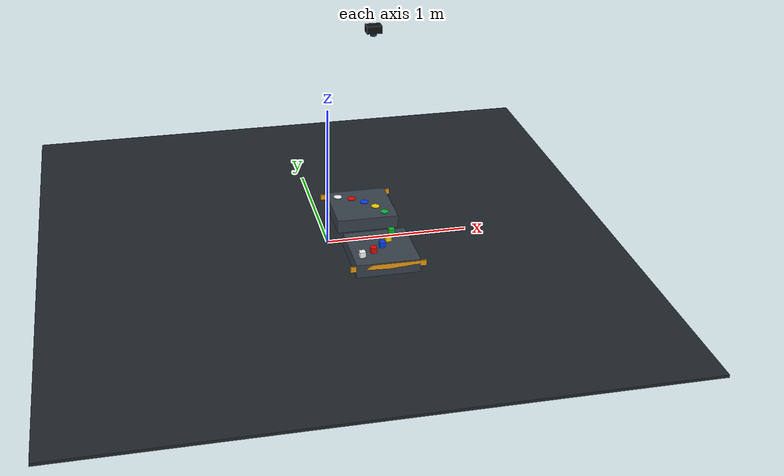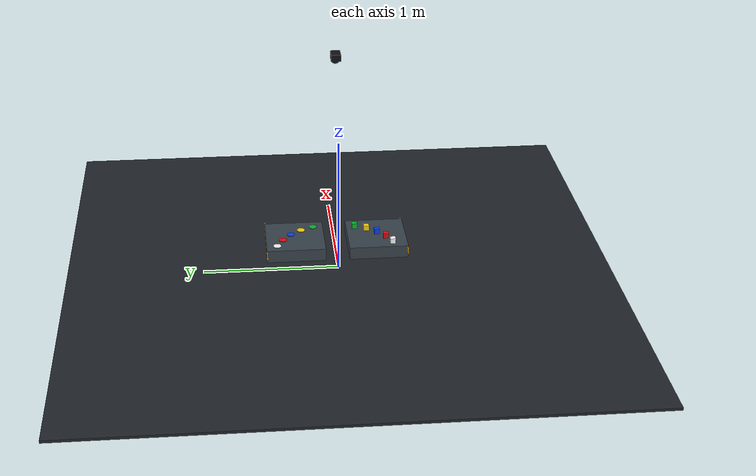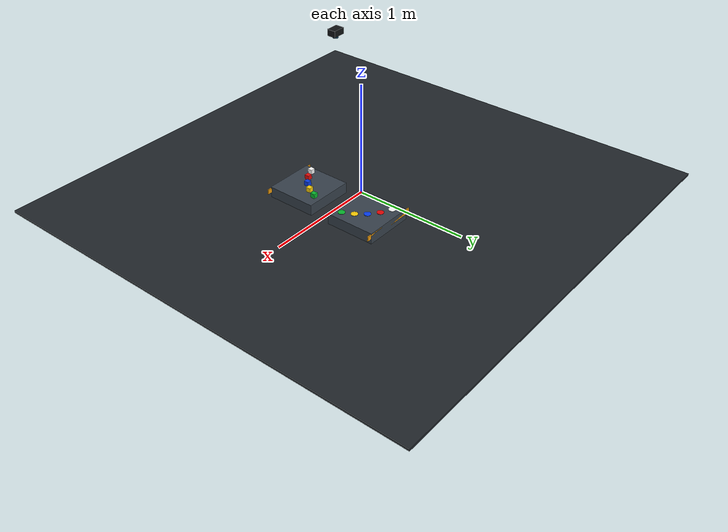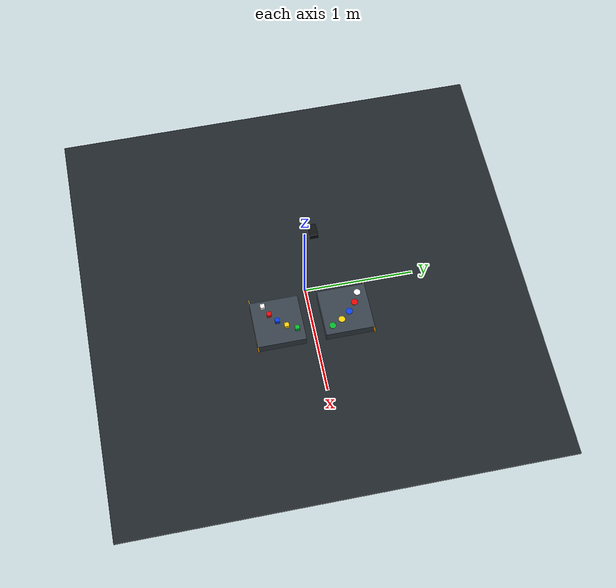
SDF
<?xml version="1.0"?>
<sdf version="1.10">
  <world name="pick_place">
    <gravity>0 0 -9.81</gravity>
    <physics name="physics" type="dart">
      <max_step_size>0.001</max_step_size>
      <real_time_factor>1.0</real_time_factor>
    </physics>

    <plugin filename="gz-sim-physics-system" name="gz::sim::systems::Physics"/>
    <plugin filename="gz-sim-user-commands-system" name="gz::sim::systems::UserCommands"/>
    <plugin filename="gz-sim-scene-broadcaster-system" name="gz::sim::systems::SceneBroadcaster"/>
    <plugin filename="gz-sim-contact-system" name="gz::sim::systems::Contact"/>
    <plugin filename="gz-sim-sensors-system" name="gz::sim::systems::Sensors">
      <render_engine>ogre2</render_engine>
    </plugin>

    <light name="key_light" type="directional">
      <cast_shadows>true</cast_shadows>
      <pose>0 0 5 0 0 0</pose>
      <diffuse>0.95 0.95 0.95 1</diffuse>
      <specular>0.25 0.25 0.25 1</specular>
      <direction>-0.35 0.25 -1.0</direction>
    </light>

    <model name="ground">
      <static>true</static>
      <link name="ground_link">
        <collision name="ground_collision">
          <geometry><box><size>4 4 0.02</size></box></geometry>
        </collision>
        <visual name="ground_visual">
          <geometry><box><size>4 4 0.02</size></box></geometry>
          <material><ambient>0.10 0.12 0.14 1</ambient><diffuse>0.13 0.15 0.17 1</diffuse></material>
        </visual>
      </link>
    </model>

    <model name="source_table">
      <static>true</static>
      <pose>0.31 -0.31 0.055 0 0 0</pose>
      <link name="table_link">
        <collision name="top_collision"><geometry><box><size>0.44 0.44 0.10</size></box></geometry></collision>
        <visual name="top_visual">
          <geometry><box><size>0.44 0.44 0.10</size></box></geometry>
          <material><ambient>0.18 0.22 0.26 1</ambient><diffuse>0.22 0.26 0.30 1</diffuse></material>
        </visual>
        <visual name="front_safety_stripe">
          <pose>0.0 -0.216 0.02 0 0 0</pose>
          <geometry><box><size>0.52 0.008 0.04</size></box></geometry>
          <material><ambient>0.95 0.62 0.04 1</ambient><diffuse>0.95 0.62 0.04 1</diffuse></material>
        </visual>
      </link>
    </model>

    <model name="destination_table">
      <static>true</static>
      <pose>0.31 0.31 0.055 0 0 0</pose>
      <link name="table_link">
        <collision name="top_collision"><geometry><box><size>0.44 0.44 0.10</size></box></geometry></collision>
        <visual name="top_visual">
          <geometry><box><size>0.44 0.44 0.10</size></box></geometry>
          <material><ambient>0.18 0.22 0.26 1</ambient><diffuse>0.22 0.26 0.30 1</diffuse></material>
        </visual>
        <visual name="front_safety_stripe">
          <pose>0.0 0.216 0.02 0 0 0</pose>
          <geometry><box><size>0.52 0.008 0.04</size></box></geometry>
          <material><ambient>0.95 0.62 0.04 1</ambient><diffuse>0.95 0.62 0.04 1</diffuse></material>
        </visual>
        <visual name="white_slot"><pose>-0.146 0.139 0.052 0 0 0</pose><geometry><cylinder><radius>0.030</radius><length>0.004</length></cylinder></geometry><material><ambient>0.9 0.9 0.9 1</ambient><diffuse>1 1 1 1</diffuse></material></visual>
        <visual name="red_slot"><pose>-0.053 0.093 0.052 0 0 0</pose><geometry><cylinder><radius>0.030</radius><length>0.004</length></cylinder></geometry><material><ambient>0.65 0.02 0.02 1</ambient><diffuse>0.9 0.03 0.03 1</diffuse></material></visual>
        <visual name="blue_slot"><pose>0.028 0.028 0.052 0 0 0</pose><geometry><cylinder><radius>0.030</radius><length>0.004</length></cylinder></geometry><material><ambient>0.02 0.15 0.65 1</ambient><diffuse>0.03 0.25 0.95 1</diffuse></material></visual>
        <visual name="yellow_slot"><pose>0.093 -0.053 0.052 0 0 0</pose><geometry><cylinder><radius>0.030</radius><length>0.004</length></cylinder></geometry><material><ambient>0.85 0.62 0.01 1</ambient><diffuse>1 0.82 0.02 1</diffuse></material></visual>
        <visual name="green_slot"><pose>0.139 -0.146 0.052 0 0 0</pose><geometry><cylinder><radius>0.030</radius><length>0.004</length></cylinder></geometry><material><ambient>0.02 0.45 0.10 1</ambient><diffuse>0.03 0.72 0.18 1</diffuse></material></visual>
      </link>
    </model>

    <model name="overhead_camera">
      <static>true</static>
      <pose>0.30 0 1.55 0 0 0</pose>
      <link name="camera_link">
        <visual name="housing">
          <geometry><box><size>0.10 0.07 0.05</size></box></geometry>
          <material><ambient>0.04 0.05 0.06 1</ambient><diffuse>0.06 0.07 0.08 1</diffuse></material>
        </visual>
        <visual name="lens">
          <pose>0 0 -0.035 0 0 0</pose>
          <geometry><cylinder><radius>0.022</radius><length>0.025</length></cylinder></geometry>
          <material><ambient>0.04 0.16 0.24 1</ambient><diffuse>0.05 0.22 0.32 1</diffuse></material>
        </visual>
        <sensor name="overhead_rgb_camera" type="camera">
          <pose>0 0 0 0 1.57079632679 0</pose>
          <always_on>true</always_on>
          <update_rate>15</update_rate>
          <visualize>true</visualize>
          <topic>/overhead_camera/image</topic>
          <camera>
            <horizontal_fov>1.20</horizontal_fov>
            <image><width>640</width><height>480</height><format>R8G8B8</format></image>
            <clip><near>0.05</near><far>10.0</far></clip>
          </camera>
        </sensor>
      </link>
    </model>

    <model name="white_cube">
      <pose>0.153 -0.419 0.125 0 0 0</pose>
      <link name="cube_link">
        <inertial><mass>0.04</mass><inertia><ixx>0.000010667</ixx><ixy>0</ixy><ixz>0</ixz><iyy>0.000010667</iyy><iyz>0</iyz><izz>0.000010667</izz></inertia></inertial>
        <collision name="collision"><geometry><box><size>0.04 0.04 0.04</size></box></geometry><surface><friction><ode><mu>5.0</mu><mu2>5.0</mu2></ode></friction></surface></collision>
        <visual name="visual"><geometry><box><size>0.04 0.04 0.04</size></box></geometry><material><ambient>0.95 0.95 0.95 1</ambient><diffuse>1 1 1 1</diffuse></material></visual>
      </link>
      <plugin filename="gz-sim-pose-publisher-system" name="gz::sim::systems::PosePublisher"><publish_model_pose>true</publish_model_pose><publish_nested_model_pose>true</publish_nested_model_pose><use_pose_vector_msg>true</use_pose_vector_msg><update_frequency>30</update_frequency></plugin>
    </model>

    <model name="red_cube">
      <pose>0.240 -0.376 0.125 0 0 0</pose>
      <link name="cube_link">
        <inertial><mass>0.04</mass><inertia><ixx>0.000010667</ixx><ixy>0</ixy><ixz>0</ixz><iyy>0.000010667</iyy><iyz>0</iyz><izz>0.000010667</izz></inertia></inertial>
        <collision name="collision"><geometry><box><size>0.04 0.04 0.04</size></box></geometry><surface><friction><ode><mu>5.0</mu><mu2>5.0</mu2></ode></friction></surface></collision>
        <visual name="visual"><geometry><box><size>0.04 0.04 0.04</size></box></geometry><material><ambient>0.78 0.03 0.03 1</ambient><diffuse>0.90 0.04 0.04 1</diffuse></material></visual>
      </link>
      <plugin filename="gz-sim-pose-publisher-system" name="gz::sim::systems::PosePublisher"><publish_model_pose>true</publish_model_pose><publish_nested_model_pose>true</publish_nested_model_pose><use_pose_vector_msg>true</use_pose_vector_msg><update_frequency>30</update_frequency></plugin>
    </model>

    <model name="blue_cube">
      <pose>0.315 -0.315 0.125 0 0 0</pose>
      <link name="cube_link">
        <inertial><mass>0.04</mass><inertia><ixx>0.000010667</ixx><ixy>0</ixy><ixz>0</ixz><iyy>0.000010667</iyy><iyz>0</iyz><izz>0.000010667</izz></inertia></inertial>
        <collision name="collision"><geometry><box><size>0.04 0.04 0.04</size></box></geometry><surface><friction><ode><mu>5.0</mu><mu2>5.0</mu2></ode></friction></surface></collision>
        <visual name="visual"><geometry><box><size>0.04 0.04 0.04</size></box></geometry><material><ambient>0.02 0.18 0.75 1</ambient><diffuse>0.03 0.24 0.92 1</diffuse></material></visual>
      </link>
      <plugin filename="gz-sim-pose-publisher-system" name="gz::sim::systems::PosePublisher"><publish_model_pose>true</publish_model_pose><publish_nested_model_pose>true</publish_nested_model_pose><use_pose_vector_msg>true</use_pose_vector_msg><update_frequency>30</update_frequency></plugin>
    </model>

    <model name="yellow_cube">
      <pose>0.376 -0.240 0.125 0 0 0</pose>
      <link name="cube_link">
        <inertial><mass>0.04</mass><inertia><ixx>0.000010667</ixx><ixy>0</ixy><ixz>0</ixz><iyy>0.000010667</iyy><iyz>0</iyz><izz>0.000010667</izz></inertia></inertial>
        <collision name="collision"><geometry><box><size>0.04 0.04 0.04</size></box></geometry><surface><friction><ode><mu>5.0</mu><mu2>5.0</mu2></ode></friction></surface></collision>
        <visual name="visual"><geometry><box><size>0.04 0.04 0.04</size></box></geometry><material><ambient>0.92 0.70 0.02 1</ambient><diffuse>1.0 0.82 0.03 1</diffuse></material></visual>
      </link>
      <plugin filename="gz-sim-pose-publisher-system" name="gz::sim::systems::PosePublisher"><publish_model_pose>true</publish_model_pose><publish_nested_model_pose>true</publish_nested_model_pose><use_pose_vector_msg>true</use_pose_vector_msg><update_frequency>30</update_frequency></plugin>
    </model>

    <model name="green_cube">
      <pose>0.419 -0.153 0.125 0 0 0</pose>
      <link name="cube_link">
        <inertial><mass>0.04</mass><inertia><ixx>0.000010667</ixx><ixy>0</ixy><ixz>0</ixz><iyy>0.000010667</iyy><iyz>0</iyz><izz>0.000010667</izz></inertia></inertial>
        <collision name="collision"><geometry><box><size>0.04 0.04 0.04</size></box></geometry><surface><friction><ode><mu>5.0</mu><mu2>5.0</mu2></ode></friction></surface></collision>
        <visual name="visual"><geometry><box><size>0.04 0.04 0.04</size></box></geometry><material><ambient>0.02 0.55 0.12 1</ambient><diffuse>0.03 0.72 0.18 1</diffuse></material></visual>
      </link>
      <plugin filename="gz-sim-pose-publisher-system" name="gz::sim::systems::PosePublisher"><publish_model_pose>true</publish_model_pose><publish_nested_model_pose>true</publish_nested_model_pose><use_pose_vector_msg>true</use_pose_vector_msg><update_frequency>30</update_frequency></plugin>
    </model>
  </world>
</sdf>
